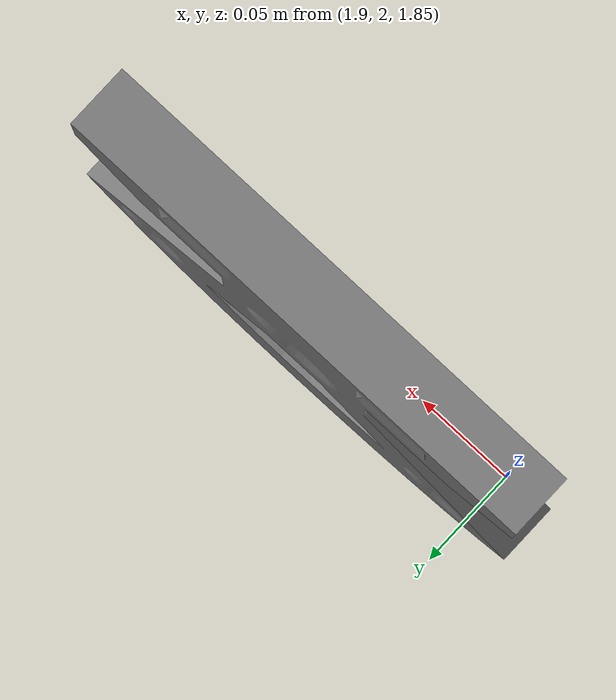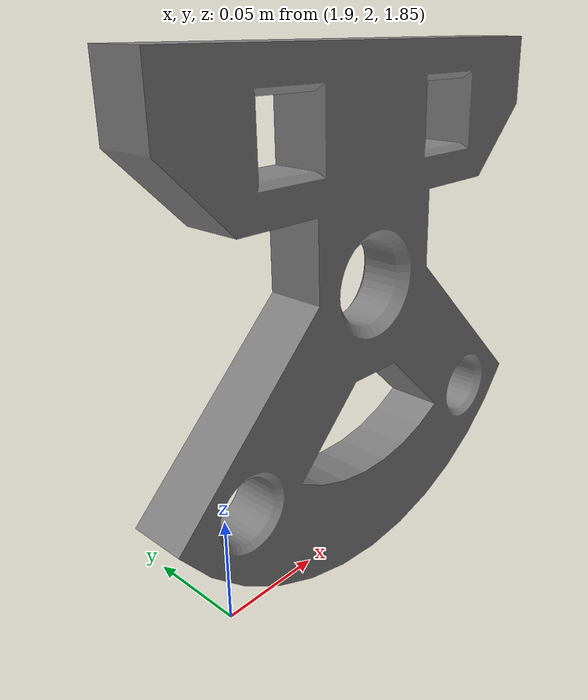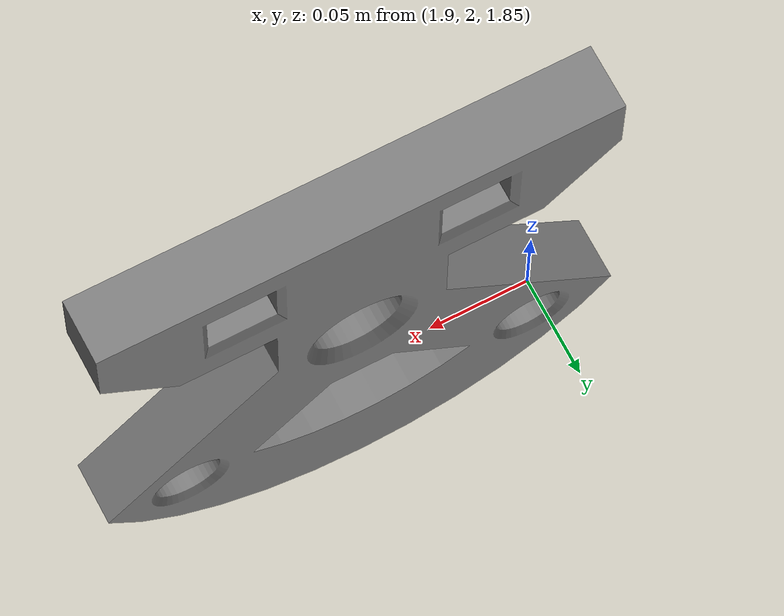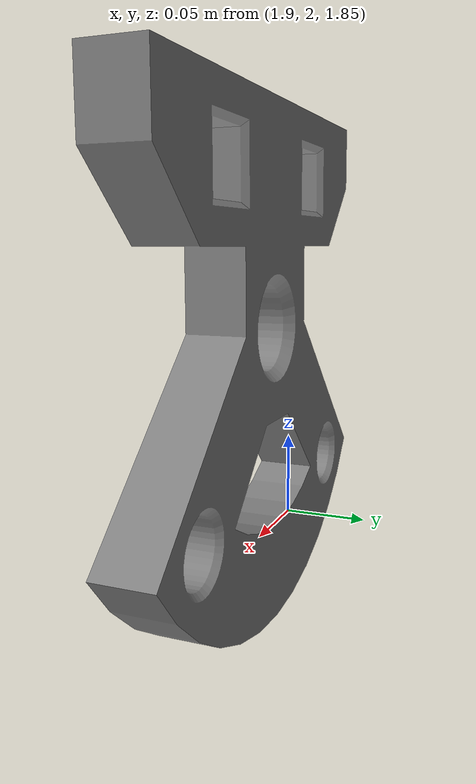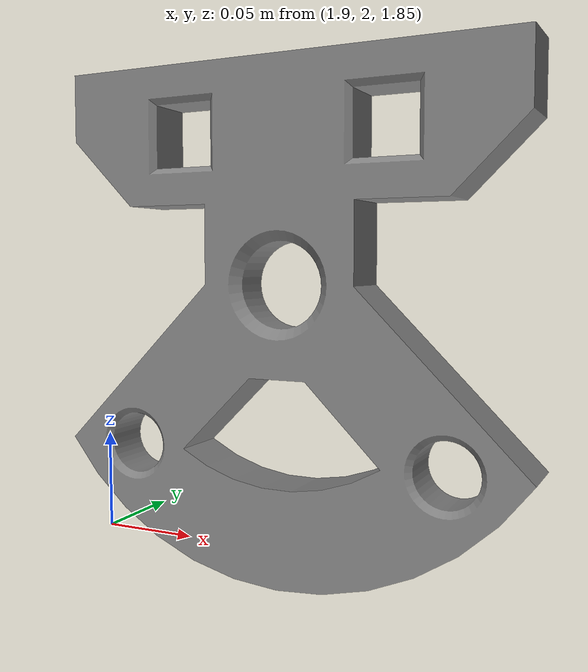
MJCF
<mujoco model="CranfieldBase-1">
  <asset>
    <mesh
      file="../../../../../assets/cranfield_assembly_benchmark/assets/CranfieldBase-1/CranfieldBase-1.obj"
      scale="0.001 0.001 0.001">
      <plugin instance="sdf" />
    </mesh>
  </asset>
  <worldbody>
    <body name="CranfieldBase-1" pos="2 2 2">
      <freejoint />
      <geom type="mesh" mesh="CranfieldBase-1" size="0.01">
        <plugin instance="sdf" />
      </geom>
    </body>
  </worldbody>
</mujoco>
